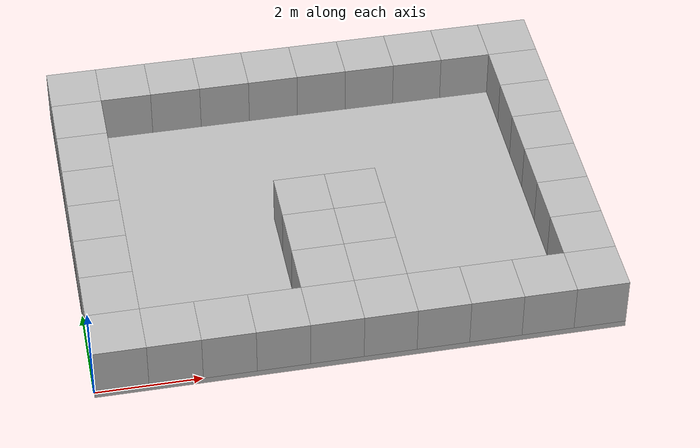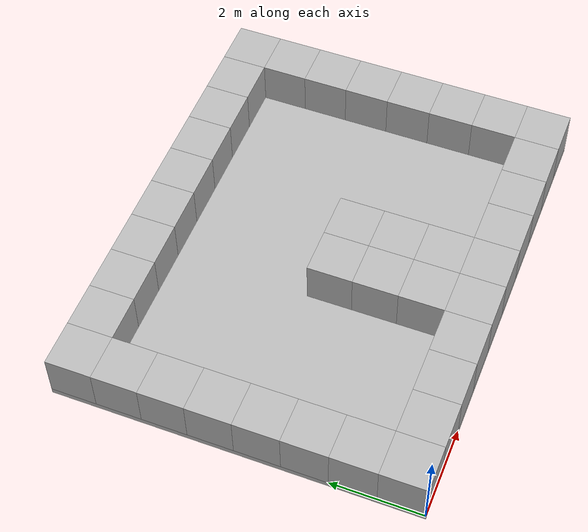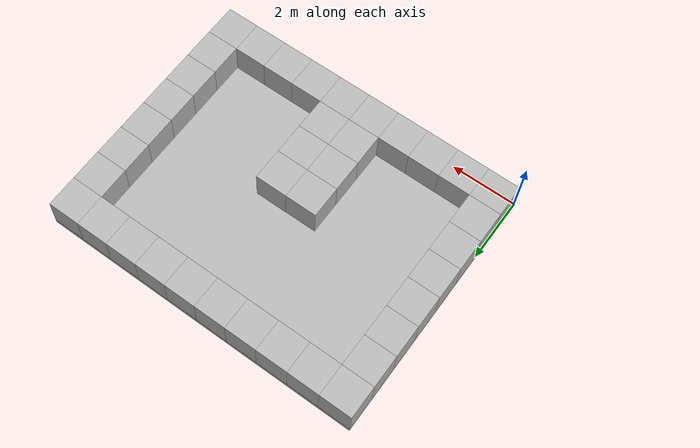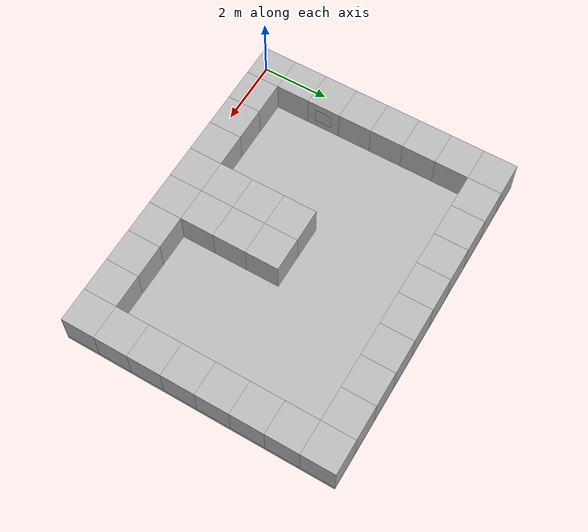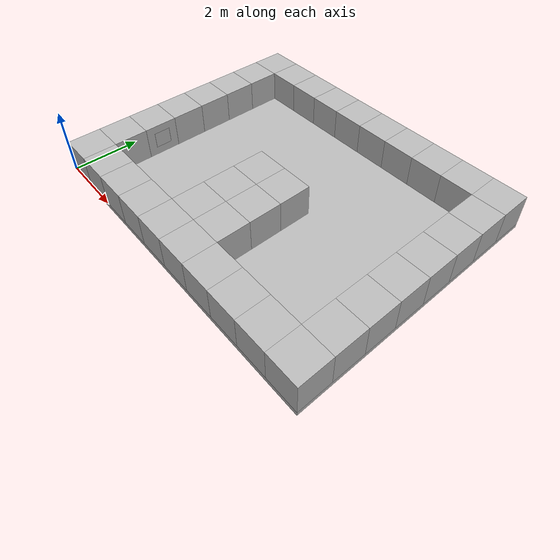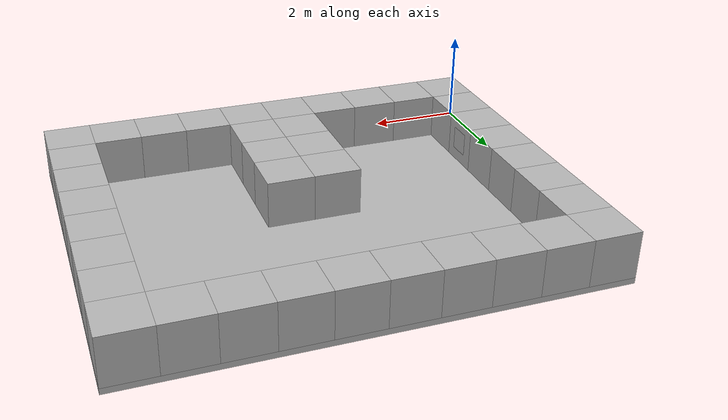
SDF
<sdf version="1.4">
  <world name="default">
    <light name="sun" type="directional">
      <cast_shadows>1</cast_shadows>
      <diffuse>0.8 0.8 0.8 1</diffuse>
      <specular>0.1 0.1 0.1 1</specular>
      <attenuation>
        <range>1000</range>
        <constant>0.9</constant>
        <linear>0.01</linear>
        <quadratic>0.001</quadratic>
      </attenuation>
      <direction>-0.5 0.5 -1</direction>
    </light>
    <model name="floor">
      <pose>5.0 4.0 -0.0625 0 0 0</pose>
      <static>true</static>
      <link name="link">
        <collision name="collision">
          <geometry>
            <box>
              <size>10.0 8.0 0.125</size>
            </box>
          </geometry>
        </collision>
        <visual name="visual">
          <geometry>
            <box>
              <size>10.0 8.0 0.125</size>
            </box>
          </geometry>
        </visual>
      </link>
    </model>
    <model name="box_0_0">
      <pose>0.5 0.5 0.5 0 0 0</pose>
      <static>true</static>
      <link name="link">
        <collision name="collision">
          <geometry>
            <box>
              <size>1.0 1.0 1.0</size>
            </box>
          </geometry>
        </collision>
        <visual name="visual">
          <geometry>
            <box>
              <size>1.0 1.0 1.0</size>
            </box>
          </geometry>
        </visual>
      </link>
    </model>
    <model name="box_0_1">
      <pose>0.5 1.5 0.5 0 0 0</pose>
      <static>true</static>
      <link name="link">
        <collision name="collision">
          <geometry>
            <box>
              <size>1.0 1.0 1.0</size>
            </box>
          </geometry>
        </collision>
        <visual name="visual">
          <geometry>
            <box>
              <size>1.0 1.0 1.0</size>
            </box>
          </geometry>
        </visual>
      </link>
    </model>
    <model name="box_0_2">
      <pose>0.5 2.5 0.5 0 0 0</pose>
      <static>true</static>
      <link name="link">
        <collision name="collision">
          <geometry>
            <box>
              <size>1.0 1.0 1.0</size>
            </box>
          </geometry>
        </collision>
        <visual name="visual">
          <geometry>
            <box>
              <size>1.0 1.0 1.0</size>
            </box>
          </geometry>
        </visual>
      </link>
    </model>
    <model name="box_0_3">
      <pose>0.5 3.5 0.5 0 0 0</pose>
      <static>true</static>
      <link name="link">
        <collision name="collision">
          <geometry>
            <box>
              <size>1.0 1.0 1.0</size>
            </box>
          </geometry>
        </collision>
        <visual name="visual">
          <geometry>
            <box>
              <size>1.0 1.0 1.0</size>
            </box>
          </geometry>
        </visual>
      </link>
    </model>
    <model name="box_0_4">
      <pose>0.5 4.5 0.5 0 0 0</pose>
      <static>true</static>
      <link name="link">
        <collision name="collision">
          <geometry>
            <box>
              <size>1.0 1.0 1.0</size>
            </box>
          </geometry>
        </collision>
        <visual name="visual">
          <geometry>
            <box>
              <size>1.0 1.0 1.0</size>
            </box>
          </geometry>
        </visual>
      </link>
    </model>
    <model name="box_0_5">
      <pose>0.5 5.5 0.5 0 0 0</pose>
      <static>true</static>
      <link name="link">
        <collision name="collision">
          <geometry>
            <box>
              <size>1.0 1.0 1.0</size>
            </box>
          </geometry>
        </collision>
        <visual name="visual">
          <geometry>
            <box>
              <size>1.0 1.0 1.0</size>
            </box>
          </geometry>
        </visual>
      </link>
    </model>
    <model name="box_0_6">
      <pose>0.5 6.5 0.5 0 0 0</pose>
      <static>true</static>
      <link name="link">
        <collision name="collision">
          <geometry>
            <box>
              <size>1.0 1.0 1.0</size>
            </box>
          </geometry>
        </collision>
        <visual name="visual">
          <geometry>
            <box>
              <size>1.0 1.0 1.0</size>
            </box>
          </geometry>
        </visual>
      </link>
    </model>
    <model name="box_0_7">
      <pose>0.5 7.5 0.5 0 0 0</pose>
      <static>true</static>
      <link name="link">
        <collision name="collision">
          <geometry>
            <box>
              <size>1.0 1.0 1.0</size>
            </box>
          </geometry>
        </collision>
        <visual name="visual">
          <geometry>
            <box>
              <size>1.0 1.0 1.0</size>
            </box>
          </geometry>
        </visual>
      </link>
    </model>
    <model name="box_1_0">
      <pose>1.5 0.5 0.5 0 0 0</pose>
      <static>true</static>
      <link name="link">
        <collision name="collision">
          <geometry>
            <box>
              <size>1.0 1.0 1.0</size>
            </box>
          </geometry>
        </collision>
        <visual name="visual">
          <geometry>
            <box>
              <size>1.0 1.0 1.0</size>
            </box>
          </geometry>
        </visual>
      </link>
    </model>
    <model name="box_1_7">
      <pose>1.5 7.5 0.5 0 0 0</pose>
      <static>true</static>
      <link name="link">
        <collision name="collision">
          <geometry>
            <box>
              <size>1.0 1.0 1.0</size>
            </box>
          </geometry>
        </collision>
        <visual name="visual">
          <geometry>
            <box>
              <size>1.0 1.0 1.0</size>
            </box>
          </geometry>
        </visual>
      </link>
    </model>
    <model name="box_2_0">
      <pose>2.5 0.5 0.5 0 0 0</pose>
      <static>true</static>
      <link name="link">
        <collision name="collision">
          <geometry>
            <box>
              <size>1.0 1.0 1.0</size>
            </box>
          </geometry>
        </collision>
        <visual name="visual">
          <geometry>
            <box>
              <size>1.0 1.0 1.0</size>
            </box>
          </geometry>
        </visual>
      </link>
    </model>
    <model name="box_2_7">
      <pose>2.5 7.5 0.5 0 0 0</pose>
      <static>true</static>
      <link name="link">
        <collision name="collision">
          <geometry>
            <box>
              <size>1.0 1.0 1.0</size>
            </box>
          </geometry>
        </collision>
        <visual name="visual">
          <geometry>
            <box>
              <size>1.0 1.0 1.0</size>
            </box>
          </geometry>
        </visual>
      </link>
    </model>
    <model name="box_3_0">
      <pose>3.5 0.5 0.5 0 0 0</pose>
      <static>true</static>
      <link name="link">
        <collision name="collision">
          <geometry>
            <box>
              <size>1.0 1.0 1.0</size>
            </box>
          </geometry>
        </collision>
        <visual name="visual">
          <geometry>
            <box>
              <size>1.0 1.0 1.0</size>
            </box>
          </geometry>
        </visual>
      </link>
    </model>
    <model name="box_3_7">
      <pose>3.5 7.5 0.5 0 0 0</pose>
      <static>true</static>
      <link name="link">
        <collision name="collision">
          <geometry>
            <box>
              <size>1.0 1.0 1.0</size>
            </box>
          </geometry>
        </collision>
        <visual name="visual">
          <geometry>
            <box>
              <size>1.0 1.0 1.0</size>
            </box>
          </geometry>
        </visual>
      </link>
    </model>
    <model name="box_4_0">
      <pose>4.5 0.5 0.5 0 0 0</pose>
      <static>true</static>
      <link name="link">
        <collision name="collision">
          <geometry>
            <box>
              <size>1.0 1.0 1.0</size>
            </box>
          </geometry>
        </collision>
        <visual name="visual">
          <geometry>
            <box>
              <size>1.0 1.0 1.0</size>
            </box>
          </geometry>
        </visual>
      </link>
    </model>
    <model name="box_4_1">
      <pose>4.5 1.5 0.5 0 0 0</pose>
      <static>true</static>
      <link name="link">
        <collision name="collision">
          <geometry>
            <box>
              <size>1.0 1.0 1.0</size>
            </box>
          </geometry>
        </collision>
        <visual name="visual">
          <geometry>
            <box>
              <size>1.0 1.0 1.0</size>
            </box>
          </geometry>
        </visual>
      </link>
    </model>
    <model name="box_4_2">
      <pose>4.5 2.5 0.5 0 0 0</pose>
      <static>true</static>
      <link name="link">
        <collision name="collision">
          <geometry>
            <box>
              <size>1.0 1.0 1.0</size>
            </box>
          </geometry>
        </collision>
        <visual name="visual">
          <geometry>
            <box>
              <size>1.0 1.0 1.0</size>
            </box>
          </geometry>
        </visual>
      </link>
    </model>
    <model name="box_4_3">
      <pose>4.5 3.5 0.5 0 0 0</pose>
      <static>true</static>
      <link name="link">
        <collision name="collision">
          <geometry>
            <box>
              <size>1.0 1.0 1.0</size>
            </box>
          </geometry>
        </collision>
        <visual name="visual">
          <geometry>
            <box>
              <size>1.0 1.0 1.0</size>
            </box>
          </geometry>
        </visual>
      </link>
    </model>
    <model name="box_4_7">
      <pose>4.5 7.5 0.5 0 0 0</pose>
      <static>true</static>
      <link name="link">
        <collision name="collision">
          <geometry>
            <box>
              <size>1.0 1.0 1.0</size>
            </box>
          </geometry>
        </collision>
        <visual name="visual">
          <geometry>
            <box>
              <size>1.0 1.0 1.0</size>
            </box>
          </geometry>
        </visual>
      </link>
    </model>
    <model name="box_5_0">
      <pose>5.5 0.5 0.5 0 0 0</pose>
      <static>true</static>
      <link name="link">
        <collision name="collision">
          <geometry>
            <box>
              <size>1.0 1.0 1.0</size>
            </box>
          </geometry>
        </collision>
        <visual name="visual">
          <geometry>
            <box>
              <size>1.0 1.0 1.0</size>
            </box>
          </geometry>
        </visual>
      </link>
    </model>
    <model name="box_5_1">
      <pose>5.5 1.5 0.5 0 0 0</pose>
      <static>true</static>
      <link name="link">
        <collision name="collision">
          <geometry>
            <box>
              <size>1.0 1.0 1.0</size>
            </box>
          </geometry>
        </collision>
        <visual name="visual">
          <geometry>
            <box>
              <size>1.0 1.0 1.0</size>
            </box>
          </geometry>
        </visual>
      </link>
    </model>
    <model name="box_5_2">
      <pose>5.5 2.5 0.5 0 0 0</pose>
      <static>true</static>
      <link name="link">
        <collision name="collision">
          <geometry>
            <box>
              <size>1.0 1.0 1.0</size>
            </box>
          </geometry>
        </collision>
        <visual name="visual">
          <geometry>
            <box>
              <size>1.0 1.0 1.0</size>
            </box>
          </geometry>
        </visual>
      </link>
    </model>
    <model name="box_5_3">
      <pose>5.5 3.5 0.5 0 0 0</pose>
      <static>true</static>
      <link name="link">
        <collision name="collision">
          <geometry>
            <box>
              <size>1.0 1.0 1.0</size>
            </box>
          </geometry>
        </collision>
        <visual name="visual">
          <geometry>
            <box>
              <size>1.0 1.0 1.0</size>
            </box>
          </geometry>
        </visual>
      </link>
    </model>
    <model name="box_5_7">
      <pose>5.5 7.5 0.5 0 0 0</pose>
      <static>true</static>
      <link name="link">
        <collision name="collision">
          <geometry>
            <box>
              <size>1.0 1.0 1.0</size>
            </box>
          </geometry>
        </collision>
        <visual name="visual">
          <geometry>
            <box>
              <size>1.0 1.0 1.0</size>
            </box>
          </geometry>
        </visual>
      </link>
    </model>
    <model name="box_6_0">
      <pose>6.5 0.5 0.5 0 0 0</pose>
      <static>true</static>
      <link name="link">
        <collision name="collision">
          <geometry>
            <box>
              <size>1.0 1.0 1.0</size>
            </box>
          </geometry>
        </collision>
        <visual name="visual">
          <geometry>
            <box>
              <size>1.0 1.0 1.0</size>
            </box>
          </geometry>
        </visual>
      </link>
    </model>
    <model name="box_6_7">
      <pose>6.5 7.5 0.5 0 0 0</pose>
      <static>true</static>
      <link name="link">
        <collision name="collision">
          <geometry>
            <box>
              <size>1.0 1.0 1.0</size>
            </box>
          </geometry>
        </collision>
        <visual name="visual">
          <geometry>
            <box>
              <size>1.0 1.0 1.0</size>
            </box>
          </geometry>
        </visual>
      </link>
    </model>
    <model name="box_7_0">
      <pose>7.5 0.5 0.5 0 0 0</pose>
      <static>true</static>
      <link name="link">
        <collision name="collision">
          <geometry>
            <box>
              <size>1.0 1.0 1.0</size>
            </box>
          </geometry>
        </collision>
        <visual name="visual">
          <geometry>
            <box>
              <size>1.0 1.0 1.0</size>
            </box>
          </geometry>
        </visual>
      </link>
    </model>
    <model name="box_7_7">
      <pose>7.5 7.5 0.5 0 0 0</pose>
      <static>true</static>
      <link name="link">
        <collision name="collision">
          <geometry>
            <box>
              <size>1.0 1.0 1.0</size>
            </box>
          </geometry>
        </collision>
        <visual name="visual">
          <geometry>
            <box>
              <size>1.0 1.0 1.0</size>
            </box>
          </geometry>
        </visual>
      </link>
    </model>
    <model name="box_8_0">
      <pose>8.5 0.5 0.5 0 0 0</pose>
      <static>true</static>
      <link name="link">
        <collision name="collision">
          <geometry>
            <box>
              <size>1.0 1.0 1.0</size>
            </box>
          </geometry>
        </collision>
        <visual name="visual">
          <geometry>
            <box>
              <size>1.0 1.0 1.0</size>
            </box>
          </geometry>
        </visual>
      </link>
    </model>
    <model name="box_8_7">
      <pose>8.5 7.5 0.5 0 0 0</pose>
      <static>true</static>
      <link name="link">
        <collision name="collision">
          <geometry>
            <box>
              <size>1.0 1.0 1.0</size>
            </box>
          </geometry>
        </collision>
        <visual name="visual">
          <geometry>
            <box>
              <size>1.0 1.0 1.0</size>
            </box>
          </geometry>
        </visual>
      </link>
    </model>
    <model name="box_9_0">
      <pose>9.5 0.5 0.5 0 0 0</pose>
      <static>true</static>
      <link name="link">
        <collision name="collision">
          <geometry>
            <box>
              <size>1.0 1.0 1.0</size>
            </box>
          </geometry>
        </collision>
        <visual name="visual">
          <geometry>
            <box>
              <size>1.0 1.0 1.0</size>
            </box>
          </geometry>
        </visual>
      </link>
    </model>
    <model name="box_9_1">
      <pose>9.5 1.5 0.5 0 0 0</pose>
      <static>true</static>
      <link name="link">
        <collision name="collision">
          <geometry>
            <box>
              <size>1.0 1.0 1.0</size>
            </box>
          </geometry>
        </collision>
        <visual name="visual">
          <geometry>
            <box>
              <size>1.0 1.0 1.0</size>
            </box>
          </geometry>
        </visual>
      </link>
    </model>
    <model name="box_9_2">
      <pose>9.5 2.5 0.5 0 0 0</pose>
      <static>true</static>
      <link name="link">
        <collision name="collision">
          <geometry>
            <box>
              <size>1.0 1.0 1.0</size>
            </box>
          </geometry>
        </collision>
        <visual name="visual">
          <geometry>
            <box>
              <size>1.0 1.0 1.0</size>
            </box>
          </geometry>
        </visual>
      </link>
    </model>
    <model name="box_9_3">
      <pose>9.5 3.5 0.5 0 0 0</pose>
      <static>true</static>
      <link name="link">
        <collision name="collision">
          <geometry>
            <box>
              <size>1.0 1.0 1.0</size>
            </box>
          </geometry>
        </collision>
        <visual name="visual">
          <geometry>
            <box>
              <size>1.0 1.0 1.0</size>
            </box>
          </geometry>
        </visual>
      </link>
    </model>
    <model name="box_9_4">
      <pose>9.5 4.5 0.5 0 0 0</pose>
      <static>true</static>
      <link name="link">
        <collision name="collision">
          <geometry>
            <box>
              <size>1.0 1.0 1.0</size>
            </box>
          </geometry>
        </collision>
        <visual name="visual">
          <geometry>
            <box>
              <size>1.0 1.0 1.0</size>
            </box>
          </geometry>
        </visual>
      </link>
    </model>
    <model name="box_9_5">
      <pose>9.5 5.5 0.5 0 0 0</pose>
      <static>true</static>
      <link name="link">
        <collision name="collision">
          <geometry>
            <box>
              <size>1.0 1.0 1.0</size>
            </box>
          </geometry>
        </collision>
        <visual name="visual">
          <geometry>
            <box>
              <size>1.0 1.0 1.0</size>
            </box>
          </geometry>
        </visual>
      </link>
    </model>
    <model name="box_9_6">
      <pose>9.5 6.5 0.5 0 0 0</pose>
      <static>true</static>
      <link name="link">
        <collision name="collision">
          <geometry>
            <box>
              <size>1.0 1.0 1.0</size>
            </box>
          </geometry>
        </collision>
        <visual name="visual">
          <geometry>
            <box>
              <size>1.0 1.0 1.0</size>
            </box>
          </geometry>
        </visual>
      </link>
    </model>
    <model name="box_9_7">
      <pose>9.5 7.5 0.5 0 0 0</pose>
      <static>true</static>
      <link name="link">
        <collision name="collision">
          <geometry>
            <box>
              <size>1.0 1.0 1.0</size>
            </box>
          </geometry>
        </collision>
        <visual name="visual">
          <geometry>
            <box>
              <size>1.0 1.0 1.0</size>
            </box>
          </geometry>
        </visual>
      </link>
    </model>
    <include>
      <uri>model://aruco_1</uri>
      <name>mark_1</name>
      <pose>1.01 2.5 0.5 0 0 1.5708</pose>
     </include>
  </world>
</sdf>

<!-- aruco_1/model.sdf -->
<sdf version='1.4'>
  <model name='aruco_1'>
    <static>true</static>
    <link name='link'>
      <visual name='visual_0'>
        <pose>0 0 0.01 1.5708 0 0</pose>

        <cast_shadows>false</cast_shadows>
        <geometry>
          <plane>
            <normal>0 0 1</normal>
            <size>0.5 0.5</size>
        </plane>
      </geometry>
        <material>
          <script>
            <uri>model://aruco_1/materials/scripts</uri>
            <uri>model://aruco_1/materials/textures</uri>
            <name>vrc/aruco_1</name>
        </script>
      </material>
    </visual>
  </link>
</model>
</sdf>
